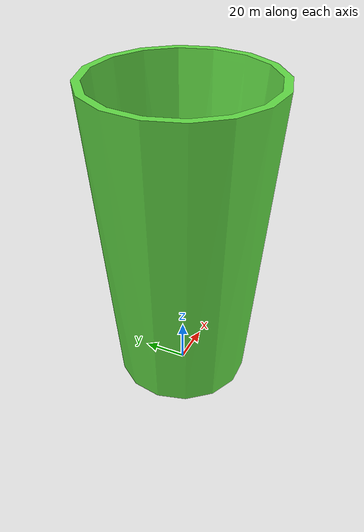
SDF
<?xml version='1.0'?>
<sdf version='1.6'>
    <model name='glass'>
        <link name='link_0'>
            <visual name='visual'>
                <pose frame=''>0 0 0 0 -0 0</pose>
                <geometry>
                    <mesh>
                        <uri>model://glass/meshes/glass.stl</uri>
                        <scale>1 1 1</scale>
                    </mesh>
                </geometry>
                <material>
                    <lighting>1</lighting>
                    <ambient>0.3843 0.8588 0.2745 1</ambient>
                    <diffuse>0.3843 0.8588 0.2745 1</diffuse>
                    <specular>0.01 0.01 0.01 1</specular>
                    <emissive>0 0 0 1</emissive>
                </material>
                <cast_shadows>1</cast_shadows>
                <transparency>0</transparency>
            </visual>
            <collision name='collision'>
                <laser_retro>0</laser_retro>
                <max_contacts>10</max_contacts>
                <pose frame=''>0 0 0 0 -0 0</pose>
                <geometry>
                    <mesh>
                        <uri>model://glass/meshes/glass.stl</uri>
                        <scale>1 1 1</scale>
                    </mesh>
                </geometry>
            </collision>
        </link>
        <static>0</static>
        <allow_auto_disable>1</allow_auto_disable>
    </model>
</sdf>
